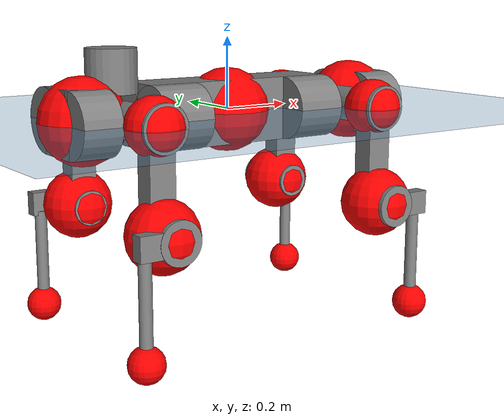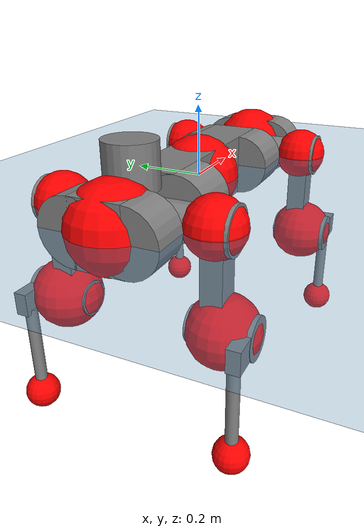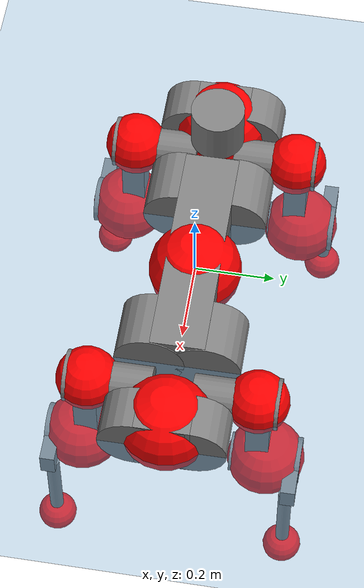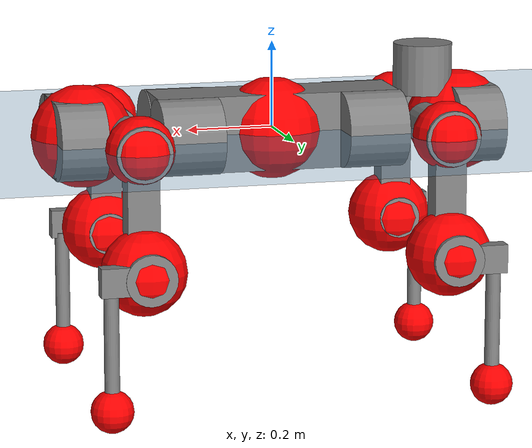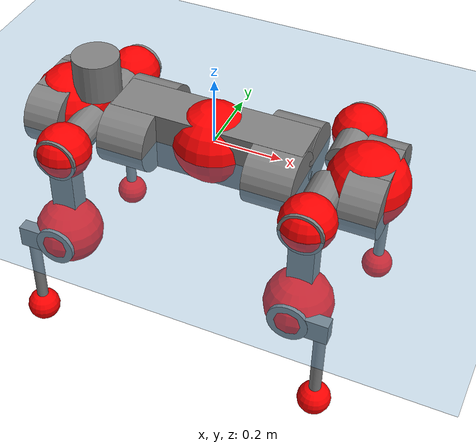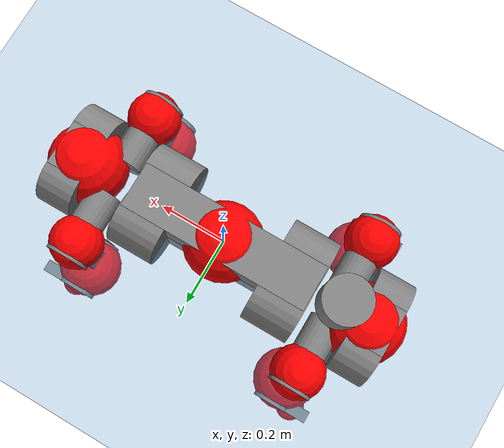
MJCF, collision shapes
<mujoco model="anymal_c">
  <compiler angle="radian" assetdir="assets" balanceinertia="true" inertiafromgeom="false"/>

  <option timestep="0.005" density="1.2" viscosity="2e-05"/>

  <size nkey="1"/>

  <visual>
    <quality shadowsize="8192"/>
    <map shadowclip="0.5"/>
  </visual>

  <default>
    <default class="/">
      <material specular="0" shininess="0.25"/>
      <geom contype="0" conaffinity="0" group="1" solref="-1000 -80"/>
      <site size="0.01 0.005 0.005" group="5"/>
      <general forcelimited="true" forcerange="-80 80" biastype="affine" gainprm="80" biasprm="0 -80 -2"/>
      <default class="anymal_c">
        <joint armature="0.01" damping="0.01" frictionloss="0.1"/>
        <default class="visual">
          <geom type="mesh" group="2"/>
          <default class="visual_zflip"/>
        </default>
        <default class="collision">
          <geom type="cylinder" group="3"/>
          <default class="foot">
            <geom size="0.03 0 0" type="sphere" condim="6" priority="1" friction="0.8 0.02 0.01" solimp="0.015 1 0.03"/>
          </default>
        </default>
      </default>
      <default class="reward_collision_sphere">
        <geom group="5" rgba="1 0 0 1"/>
      </default>
    </default>
  </default>

  <asset>
    <texture type="skybox" colorspace="auto" name="//unnamed_texture_0" builtin="gradient" rgb1="0.95 0.95 0.95" rgb2="0.95 0.95 0.95" width="100" height="600"/>
    <texture type="2d" colorspace="auto" name="texplane" builtin="checker" rgb1="0.345 0.575 0.748" rgb2="0.345 0.575 0.748" markrgb="1 1 1" width="512" height="512"/>
    <texture type="2d" colorspace="linear" name="base" file="base.png"/>
    <texture type="2d" colorspace="linear" name="top_shell" file="top_shell.png"/>
    <texture type="2d" colorspace="linear" name="bottom_shell" file="bottom_shell.png"/>
    <texture type="2d" colorspace="linear" name="remote" file="remote.png"/>
    <texture type="2d" colorspace="linear" name="hatch" file="hatch.png"/>
    <texture type="2d" colorspace="linear" name="handle" file="handle.png"/>
    <texture type="2d" colorspace="linear" name="face" file="face.png"/>
    <texture type="2d" colorspace="linear" name="battery" file="battery.png"/>
    <texture type="2d" colorspace="linear" name="lidar_cage" file="lidar_cage.png"/>
    <texture type="2d" colorspace="linear" name="depth_camera" file="depth_camera.png"/>
    <texture type="2d" colorspace="linear" name="wide_angle_camera" file="wide_angle_camera.png"/>
    <texture type="2d" colorspace="linear" name="lidar" file="lidar.png"/>
    <texture type="2d" colorspace="linear" name="drive" file="drive.png"/>
    <texture type="2d" colorspace="linear" name="hip_l" file="hip_l.png"/>
    <texture type="2d" colorspace="linear" name="shank_l" file="shank_l.png"/>
    <texture type="2d" colorspace="linear" name="foot" file="foot.png"/>
    <texture type="2d" colorspace="linear" name="thigh" file="thigh.png"/>
    <texture type="2d" colorspace="linear" name="shank_r" file="shank_r.png"/>
    <texture type="2d" colorspace="linear" name="hip_r" file="hip_r.png"/>
    <material name="MatPlane" class="/" texture="texplane" texuniform="true" texrepeat="2 2" specular="0.9" shininess="0.5"/>
    <material name="black_plastic" class="/" rgba="0.007 0.007 0.007 1"/>
    <material name="green" class="/" rgba="0.052 0.178 0.033 1"/>
    <material name="red" class="/" rgba="0.178 0.006 0.005 1"/>
    <material name="yellow" class="/" rgba="0.178 0.119 0.006 1"/>
    <material name="lwl" class="/" rgba="0.8 0.8 0.8 1"/>
    <material name="base" class="/" texture="base"/>
    <material name="top_shell" class="/" texture="top_shell"/>
    <material name="bottom_shell" class="/" texture="bottom_shell"/>
    <material name="hip_l" class="/" texture="hip_l"/>
    <material name="thigh" class="/" texture="thigh"/>
    <material name="shank_l" class="/" texture="shank_l"/>
    <material name="foot" class="/" texture="foot"/>
    <material name="hip_r" class="/" texture="hip_r"/>
    <material name="shank" class="/" texture="shank_r"/>
    <material name="hatch" class="/" texture="hatch"/>
    <material name="remote" class="/" texture="remote"/>
    <material name="handle" class="/" texture="handle"/>
    <material name="face" class="/" texture="face"/>
    <material name="depth_camera" class="/" texture="depth_camera"/>
    <material name="wide_angle_camera" class="/" texture="wide_angle_camera"/>
    <material name="battery" class="/" texture="battery"/>
    <material name="lidar_cage" class="/" texture="lidar_cage"/>
    <material name="lidar" class="/" texture="lidar"/>
    <material name="drive" class="/" texture="drive"/>
    <mesh name="base_0" class="/" file="base_0.obj"/>
    <mesh name="base_1" class="/" file="base_1.obj"/>
    <mesh name="base_2" class="/" file="base_2.obj"/>
    <mesh name="base_3" class="/" file="base_3.obj"/>
    <mesh name="base_4" class="/" file="base_4.obj"/>
    <mesh name="base_5" class="/" file="base_5.obj"/>
    <mesh name="top_shell" class="/" file="top_shell.obj"/>
    <mesh name="bottom_shell" class="/" file="bottom_shell.obj"/>
    <mesh name="remote" class="/" file="remote.obj"/>
    <mesh name="handle" class="/" file="handle.obj"/>
    <mesh name="face" class="/" file="face.obj"/>
    <mesh name="wide_angle_camera" class="/" file="wide_angle_camera.obj"/>
    <mesh name="depth_camera" class="/" file="depth_camera.obj"/>
    <mesh name="battery" class="/" file="battery.obj"/>
    <mesh name="lidar_cage" class="/" file="lidar_cage.obj"/>
    <mesh name="lidar" class="/" file="lidar.obj"/>
    <mesh name="drive" class="/" file="drive.obj"/>
    <mesh name="hip_l" class="/" file="hip_l.obj"/>
    <mesh name="thigh" class="/" file="thigh.obj"/>
    <mesh name="shank_l" class="/" file="shank_l.obj"/>
    <mesh name="foot" class="/" file="foot.obj"/>
    <mesh name="hip_r" class="/" file="hip_r.obj"/>
    <mesh name="hatch" class="/" file="hatch.obj"/>
    <mesh name="shank_r" class="/" file="shank_r.obj"/>
  </asset>

  <worldbody>
    <geom name="floor" class="/" size="100 100 0.125" type="plane" group="0" material="MatPlane"/>
    <light name="toplight_shadow" class="/" pos="0 0 5" dir="0.0990148 0.0990148 -0.990148" type="directional" ambient="0.04 0.04 0.04" diffuse="0.55 0.55 0.55" specular="0.12 0.12 0.12"/>
    <light name="toplight_fill" class="/" pos="0 0 5" dir="0.0990148 0.0990148 -0.990148" type="directional" castshadow="false" ambient="0.04 0.04 0.04" diffuse="0.3 0.3 0.3" specular="0.08 0.08 0.08"/>
    <body name="trunk" childclass="anymal_c" pos="-0.000972719 0.000519013 -0.00159988" quat="0.999999 -0.000403984 -0.000139375 0.000936153">
      <inertial pos="0.00162665 0.00255412 0.0434128" quat="0.498325 0.491671 0.503906 0.505975" mass="17.7703" diaginertia="0.647996 0.643902 0.166614"/>
      <joint name="//unnamed_joint_0" type="free" armature="0" damping="0" frictionloss="0"/>
      <geom name="//unnamed_geom_1" class="visual" material="green" mesh="base_0"/>
      <geom name="//unnamed_geom_2" class="visual" material="yellow" mesh="base_1"/>
      <geom name="//unnamed_geom_3" class="visual" material="red" mesh="base_2"/>
      <geom name="//unnamed_geom_4" class="visual" material="black_plastic" mesh="base_3"/>
      <geom name="//unnamed_geom_5" class="visual" material="lwl" mesh="base_4"/>
      <geom name="//unnamed_geom_6" class="visual" material="base" mesh="base_5"/>
      <geom name="trunk_1" class="collision" size="0.284812 0.0687478 0.08839" type="box"/>
      <geom name="trunk_2" class="collision" size="0.08839 0.0712031" pos="0.216835 0.0701892 0" quat="0.707107 0 0.707107 0"/>
      <geom name="trunk_3" class="collision" size="0.08839 0.0712031" pos="-0.216835 0.0701892 0" quat="0.707107 0 0.707107 0"/>
      <geom name="trunk_4" class="collision" size="0.08839 0.0712031" pos="0.216835 -0.0701892 0" quat="0.707107 0 0.707107 0"/>
      <geom name="trunk_5" class="collision" size="0.08839 0.0712031" pos="-0.216835 -0.0701892 0" quat="0.707107 0 0.707107 0"/>
      <geom name="//unnamed_geom_12" class="visual" material="top_shell" mesh="top_shell"/>
      <geom name="//unnamed_geom_13" class="visual" material="bottom_shell" mesh="bottom_shell"/>
      <geom name="//unnamed_geom_14" class="visual" material="remote" mesh="remote"/>
      <geom name="//unnamed_geom_15" class="visual" material="handle" mesh="handle"/>
      <geom name="//unnamed_geom_16" class="visual" pos="0.413232 0 0" quat="1 0 0 0" material="face" mesh="face"/>
      <geom name="trunk_6" class="collision" size="0.0540161 0.0687478 0.08839" pos="0.468064 0 0" type="box"/>
      <geom name="//unnamed_geom_18" class="collision" size="0.08839 0.0540161" pos="0.468064 0.0701892 0" quat="0.707107 0 0.707107 0"/>
      <geom name="//unnamed_geom_19" class="collision" size="0.08839 0.0540161" pos="0.468064 -0.0701892 0" quat="0.707107 0 0.707107 0"/>
      <geom name="//unnamed_geom_20" class="visual" pos="0.460236 0 -0.0272615" quat="0.965926 0 0.258819 0" material="depth_camera" mesh="depth_camera"/>
      <geom name="//unnamed_geom_21" class="visual" pos="0.511431 0 0.014172" material="wide_angle_camera" mesh="wide_angle_camera"/>
      <geom name="//unnamed_geom_22" class="visual_zflip" pos="-0.413232 0 0" quat="0 0 0 1" material="face" mesh="face"/>
      <geom name="trunk_7" class="collision" size="0.0540161 0.0687478 0.08839" pos="-0.468064 0 0" quat="0 0 0 1" type="box"/>
      <geom name="//unnamed_geom_24" class="collision" size="0.08839 0.0540161" pos="-0.468064 -0.0701892 0" quat="0 -0.707107 0 0.707107"/>
      <geom name="//unnamed_geom_25" class="collision" size="0.08839 0.0540161" pos="-0.468064 0.0701892 0" quat="0 -0.707107 0 0.707107"/>
      <geom name="//unnamed_geom_26" class="visual" pos="-0.460236 0 -0.0272615" quat="0 -0.258819 0 0.965926" material="depth_camera" mesh="depth_camera"/>
      <geom name="//unnamed_geom_27" class="visual_zflip" pos="-0.511431 0 0.014172" quat="0 0 0 1" material="wide_angle_camera" mesh="wide_angle_camera"/>
      <geom name="//unnamed_geom_28" class="visual" material="battery" mesh="battery"/>
      <geom name="//unnamed_geom_29" class="visual" pos="0 0.0767401 0.0278833" quat="0.683013 -0.183013 0.183013 0.683013" material="depth_camera" mesh="depth_camera"/>
      <geom name="//unnamed_geom_30" class="visual" pos="0 -0.0767401 0.0278833" quat="0.683013 0.183013 0.183013 -0.683013" material="depth_camera" mesh="depth_camera"/>
      <geom name="//unnamed_geom_31" class="visual" pos="-0.362887 0 0.0695817" quat="1 0 0 0" material="lidar_cage" mesh="lidar_cage"/>
      <geom name="trunk_8" class="collision" size="0.0687478 0.0589267" pos="-0.362887 0 0.126383"/>
      <geom name="//unnamed_geom_33" class="visual" pos="-0.362887 2.2633e-06 0.134619" quat="0.707107 0 0 -0.707107" material="lidar" mesh="lidar"/>
      <geom name="//unnamed_geom_34" class="visual" pos="0.298983 0.104261 9.66209e-10" quat="0.258819 0.965926 0 0" material="drive" mesh="drive"/>
      <geom name="//unnamed_geom_35" class="visual" pos="0.298983 -0.104261 -9.66209e-10" quat="0.258819 -0.965926 0 0" material="drive" mesh="drive"/>
      <geom name="//unnamed_geom_36" class="visual" pos="-0.298983 0.104261 -9.66209e-10" quat="0 0 0.965926 -0.258819" material="drive" mesh="drive"/>
      <geom name="//unnamed_geom_37" class="visual" pos="-0.298983 -0.104261 9.66209e-10" quat="0 0 -0.965926 -0.258819" material="drive" mesh="drive"/>
      <geom name="//unnamed_geom_38" class="visual" pos="0.115645 0 0.0691084" quat="1 0 0 0" material="hatch" mesh="hatch"/>
      <geom name="//unnamed_geom_39" class="reward_collision_sphere" size="0.117853"/>
      <geom name="//unnamed_geom_40" class="reward_collision_sphere" size="0.117853" pos="0.448624 0 0"/>
      <geom name="//unnamed_geom_41" class="reward_collision_sphere" size="0.117853" pos="-0.448624 0 0"/>
      <site name="imu" pos="0.246109 0.0218229 0.0300555" size="0.00982111"/>
      <camera name="track" pos="0 -2.0054 0" quat="0.707107 0.707107 0 0" mode="trackcom"/>
      <camera name="ego_camera" pos="0.448624 0 -0.0378676" quat="-0.5 -0.5 0.5 0.5"/>
      <body name="LF_HIP" pos="0.299406 0.10645 0.00266804" quat="0.258925 0.965898 4.92154e-05 7.10722e-05">
        <inertial pos="0.0542737 -0.0144918 -0.00933768" quat="-0.126214 0.710659 -0.12694 0.680382" mass="2.55664" diaginertia="0.00577285 0.00477601 0.00241297"/>
        <joint name="LF_HAA" pos="0 0 0" axis="0.999939 -0.00687813 -0.00858593" range="-0.727787 0.539602" armature="0.00990082" damping="0" frictionloss="0.110493"/>
        <geom name="//unnamed_geom_42" class="visual" pos="0 5.68377e-05 -9.33555e-06" quat="0.258819 -0.965926 0 0" material="hip_l" mesh="hip_l"/>
        <geom name="//unnamed_geom_43" class="visual" pos="0.0597168 -0.0724155 -0.0413948" quat="0.183013 -0.683013 0.683013 0.183013" material="drive" mesh="drive"/>
        <geom name="//unnamed_geom_44" class="collision" size="0.0491056 0.0687478" pos="0.0597168 -0.0119921 -0.0065369" quat="-0.353553 -0.612372 0.612372 -0.353553"/>
        <body name="LF_THIGH" pos="0.0573417 -0.0705798 -0.0377092" quat="0.183099 -0.682925 0.683122 0.182846">
          <inertial pos="0.0309487 0.000587541 -0.231817" quat="0.993625 -0.00547024 -0.0755823 0.0834659" mass="2.82189" diaginertia="0.0287905 0.029363 0.00298054"/>
          <joint name="LF_HFE" pos="0 0 0" axis="0.999995 0.00263956 -0.00172389" range="-3.19808 3.13537" armature="0.00857809" damping="0.021737" frictionloss="0.0978789"/>
          <geom name="//unnamed_geom_45" class="visual" pos="-0.000114619 -1.80613e-07 0" quat="0.707107 0 0 -0.707107" material="thigh" mesh="thigh"/>
          <geom name="//unnamed_geom_46" class="collision" size="0.0638372 0.0392845" pos="0.0398777 0 0" quat="0.5 0.5 -0.5 -0.5"/>
          <geom name="//unnamed_geom_47" class="collision" size="0.0368292 0.0294633 0.138786" pos="0.0299082 0 -0.133781" quat="0.707107 0 0 -0.707107" type="box"/>
          <geom name="//unnamed_geom_48" class="visual" pos="0.0999932 0 -0.269807" quat="1 0 0 0" material="drive" mesh="drive"/>
          <geom name="//unnamed_geom_49" class="collision" size="0.0491056 0.0687478" pos="0.0302073 0 -0.269807" quat="0.707107 0 0.707107 0"/>
          <geom name="//unnamed_geom_50" class="reward_collision_sphere" size="0.0785689" pos="0.0249235 0 0"/>
          <body name="LF_SHANK" pos="0.100608 0.000510645 -0.271088" quat="1 -7.09469e-06 2.43436e-06 3.52659e-05">
            <inertial pos="0.00446416 -0.0633141 -0.0765937" quat="0.992573 -0.119 -7.50347e-05 -0.0252572" mass="0.563848" diaginertia="0.00978894 0.00928743 0.000849763"/>
            <joint name="LF_KFE" pos="0 0 0" axis="0.999988 -0.00382773 -0.00304153" range="-3.16225 3.19279" armature="0.00967947" damping="0.00962154" frictionloss="0.105078"/>
            <geom name="//unnamed_geom_51" class="visual" pos="-3.73747e-05 -0.000199284 0" quat="0.707107 0 0 -0.707107" material="shank_l" mesh="shank_l"/>
            <geom name="LF_kfe_act" class="collision" size="0.0589267 0.0196422" pos="0.0199388 0 0" quat="0.5 0.5 -0.5 -0.5"/>
            <geom name="//unnamed_geom_53" class="collision" size="0.0564704 0.0331463 0.0186601" pos="0.0199388 -0.0576544 0" quat="0.5 0.5 -0.5 -0.5" type="box"/>
            <geom name="//unnamed_geom_54" class="visual" pos="0.0130101 -0.0882519 -0.319953" quat="0.382683 0 0 -0.92388" material="foot" mesh="foot"/>
            <geom name="LF_calf" class="collision" size="0.0171869 0.138725" pos="0.0130101 -0.0881877 -0.159976" quat="0.707107 0 0 -0.707107"/>
            <geom name="LF_foot" class="foot" size="0.0290459" pos="0.0130101 -0.0881877 -0.298652" quat="0.707107 0 0 -0.707107"/>
            <geom name="//unnamed_geom_57" class="reward_collision_sphere" size="0.0982111" pos="-0.0498471 0 0"/>
            <geom name="//unnamed_geom_58" class="reward_collision_sphere" size="0.0491056" pos="0.0130101 -0.0881877 -0.298652"/>
            <site name="LF_foot" class="foot" pos="0.0130101 -0.0881877 -0.298652" quat="0.707107 0 0 -0.707107" size="0.00982111"/>
          </body>
        </body>
      </body>
      <body name="RF_HIP" pos="0.297098 -0.103728 0.00249881" quat="0.25925 -0.96581 -0.000290451 -8.20567e-05">
        <inertial pos="0.0549125 0.0156808 -0.00866732" quat="0.133793 0.676193 0.122569 0.714031" mass="2.65055" diaginertia="0.00566132 0.00492374 0.00244448"/>
        <joint name="RF_HAA" pos="0 0 0" axis="0.999947 -0.00134361 0.0102295" range="-0.525735 0.674367" armature="0.00999518" damping="0" frictionloss="0.112005"/>
        <geom name="//unnamed_geom_59" class="visual" pos="0 -5.68373e-05 -9.33552e-06" quat="0.258819 0.965926 0 0" material="hip_r" mesh="hip_r"/>
        <geom name="//unnamed_geom_60" class="visual" pos="0.0597168 0.0724155 -0.0413948" quat="0.183013 0.683013 0.683013 -0.183013" material="drive" mesh="drive"/>
        <geom name="//unnamed_geom_61" class="collision" size="0.0491056 0.0687478" pos="0.0597168 0.0119921 -0.0065369" quat="-0.353553 0.612372 0.612372 0.353553"/>
        <body name="RF_THIGH" pos="0.0600078 0.0700686 -0.0407955" quat="0.18368 0.682793 0.682925 -0.18349">
          <inertial pos="0.0285809 0.000462274 -0.233013" quat="0.992747 -0.00721363 -0.0788666 0.0904495" mass="3.02161" diaginertia="0.0297315 0.029399 0.00327611"/>
          <joint name="RF_HFE" pos="0 0 0" axis="1 -0.00035461 -3.15572e-05" stiffness="0.0133184" range="-3.14788 3.08501" armature="0.00873696" damping="0.00715291" frictionloss="0.0848061"/>
          <geom name="//unnamed_geom_62" class="visual" pos="-0.000114619 -1.80613e-07 0" quat="0.707107 0 0 -0.707107" material="thigh" mesh="thigh"/>
          <geom name="//unnamed_geom_63" class="collision" size="0.0638372 0.0392845" pos="0.0398777 0 0" quat="0.5 0.5 0.5 0.5"/>
          <geom name="//unnamed_geom_64" class="collision" size="0.0368292 0.0294633 0.138786" pos="0.0299082 0 -0.133781" quat="0.707107 0 0 0.707107" type="box"/>
          <geom name="//unnamed_geom_65" class="visual" pos="0.0999932 0 -0.269807" quat="1 0 0 0" material="drive" mesh="drive"/>
          <geom name="//unnamed_geom_66" class="collision" size="0.0491056 0.0687478" pos="0.0302073 0 -0.269807" quat="0.707107 0 0.707107 0"/>
          <geom name="//unnamed_geom_67" class="reward_collision_sphere" size="0.0785689" pos="0.0249235 0 0"/>
          <body name="RF_SHANK" pos="0.0979185 0.000370754 -0.270372" quat="1 -5.44669e-06 -4.52942e-05 -0.000104441">
            <inertial pos="0.00549523 0.0592537 -0.0733859" quat="0.993105 0.113234 0.00164576 0.0302822" mass="0.547306" diaginertia="0.0098468 0.00938773 0.000799362"/>
            <joint name="RF_KFE" pos="0 0 0" axis="0.999997 -0.00191055 -0.00173795" range="-3.14288 3.15591" armature="0.00943555" damping="0" frictionloss="0.0866837"/>
            <geom name="//unnamed_geom_68" class="visual" pos="-3.73745e-05 0.000199284 0" quat="0.707107 0 0 0.707107" material="shank" mesh="shank_r"/>
            <geom name="RF_kfe_act" class="collision" size="0.0589267 0.0196422" pos="0.0199388 0 0" quat="0.5 0.5 0.5 0.5"/>
            <geom name="//unnamed_geom_70" class="collision" size="0.0564704 0.0331463 0.0186601" pos="0.0199388 0.0576544 0" quat="0.5 0.5 0.5 0.5" type="box"/>
            <geom name="//unnamed_geom_71" class="visual" pos="0.0130101 0.0882519 -0.319953" quat="0.382683 0 0 0.92388" material="foot" mesh="foot"/>
            <geom name="RF_calf" class="collision" size="0.0171869 0.138725" pos="0.0130101 0.0881877 -0.159976" quat="0.707107 0 0 0.707107"/>
            <geom name="RF_foot" class="foot" size="0.0272226" pos="0.0130101 0.0881877 -0.298652" quat="0.707107 0 0 0.707107"/>
            <geom name="//unnamed_geom_74" class="reward_collision_sphere" size="0.0982111" pos="-0.0498471 0 0"/>
            <geom name="//unnamed_geom_75" class="reward_collision_sphere" size="0.0491056" pos="0.0130101 0.0881877 -0.298652"/>
            <site name="RF_foot" class="foot" pos="0.0130101 0.0881877 -0.298652" quat="0.707107 0 0 0.707107" size="0.00982111"/>
          </body>
        </body>
      </body>
      <body name="LH_HIP" pos="-0.299033 0.102114 0.00318558" quat="0.000487635 0.00045102 0.96596 -0.258691">
        <inertial pos="0.0557549 0.0129429 -0.00945303" quat="0.13714 0.672943 0.126954 0.715698" mass="2.57897" diaginertia="0.00541532 0.00492723 0.00233436"/>
        <joint name="LH_HAA" pos="0 0 0" axis="0.999916 -0.0111246 0.00670077" range="-0.541545 0.764237" armature="0.0110374" damping="0.00318381" frictionloss="0.097584"/>
        <geom name="//unnamed_geom_76" class="visual" pos="0 -5.68373e-05 -9.33552e-06" quat="-0.258819 -0.965926 0 0" material="hip_r" mesh="hip_r"/>
        <geom name="//unnamed_geom_77" class="visual" pos="0.0597168 0.0724155 -0.0413948" quat="0.183013 0.683013 0.683013 -0.183013" material="drive" mesh="drive"/>
        <geom name="//unnamed_geom_78" class="collision" size="0.0491056 0.0687478" pos="0.0597168 0.0119921 -0.0065369" quat="-0.353553 0.612372 0.612372 0.353553"/>
        <body name="LH_THIGH" pos="0.0596529 0.0705235 -0.0399836" quat="0.181817 0.683224 0.68287 -0.183947">
          <inertial pos="0.0319697 -0.00294959 -0.233715" quat="0.992801 -0.00502063 -0.0806064 0.0884554" mass="2.96791" diaginertia="0.0309074 0.0303266 0.00333303"/>
          <joint name="LH_HFE" pos="0 0 0" axis="0.999966 0.00750806 0.00332356" stiffness="0.00877255" range="-3.19887 3.12793" armature="0.00969316" damping="0.0037553" frictionloss="0.108737"/>
          <geom name="//unnamed_geom_79" class="visual" pos="-0.000114619 -1.80613e-07 0" quat="0.707107 0 0 -0.707107" material="thigh" mesh="thigh"/>
          <geom name="//unnamed_geom_80" class="collision" size="0.0638372 0.0392845" pos="0.0398777 0 0" quat="0.5 0.5 -0.5 -0.5"/>
          <geom name="//unnamed_geom_81" class="collision" size="0.0368292 0.0294633 0.138786" pos="0.0299082 0 -0.133781" quat="0.707107 0 0 -0.707107" type="box"/>
          <geom name="//unnamed_geom_82" class="visual" pos="0.0999932 0 -0.269807" quat="1 0 0 0" material="drive" mesh="drive"/>
          <geom name="//unnamed_geom_83" class="collision" size="0.0491056 0.0687478" pos="0.0302073 0 -0.269807" quat="0.707107 0 0.707107 0"/>
          <geom name="//unnamed_geom_84" class="reward_collision_sphere" size="0.0785689" pos="0.0249235 0 0"/>
          <body name="LH_SHANK" pos="0.0976906 -0.00117303 -0.271339" quat="0.999999 -0.000837324 0.00117087 0.000167804">
            <inertial pos="0.00372567 0.06407 -0.0776847" quat="0.992417 0.119708 0.00940561 0.0262822" mass="0.532852" diaginertia="0.00963238 0.00875472 0.000841166"/>
            <joint name="LH_KFE" pos="0 0 0" axis="1 -0.000185483 -0.00049685" range="-3.15866 3.11999" armature="0.0109215" damping="0.00329621" frictionloss="0.0972575"/>
            <geom name="//unnamed_geom_85" class="visual" pos="-3.73745e-05 0.000199284 0" quat="-0.707107 0 0 -0.707107" material="shank" mesh="shank_r"/>
            <geom name="LH_kfe_act" class="collision" size="0.0589267 0.0196422" pos="0.0199388 0 0" quat="0.5 0.5 -0.5 -0.5"/>
            <geom name="//unnamed_geom_87" class="collision" size="0.0564704 0.0331463 0.0186601" pos="0.0199388 0.0576544 0" quat="0.5 0.5 -0.5 -0.5" type="box"/>
            <geom name="//unnamed_geom_88" class="visual" pos="0.0130101 0.0882519 -0.319953" quat="-0.382683 0 0 -0.92388" material="foot" mesh="foot"/>
            <geom name="LH_calf" class="collision" size="0.0171869 0.138725" pos="0.0130101 0.0881877 -0.159976" quat="0.707107 0 0 -0.707107"/>
            <geom name="LH_foot" class="foot" size="0.0322591" pos="0.0130101 0.0881877 -0.298652" quat="0.707107 0 0 -0.707107"/>
            <geom name="//unnamed_geom_91" class="reward_collision_sphere" size="0.0982111" pos="-0.0498471 0 0"/>
            <geom name="//unnamed_geom_92" class="reward_collision_sphere" size="0.0491056" pos="0.0130101 0.0881877 -0.298652"/>
            <site name="LH_foot" class="foot" pos="0.0130101 0.0881877 -0.298652" quat="0.707107 0 0 -0.707107" size="0.00982111"/>
          </body>
        </body>
      </body>
      <body name="RH_HIP" pos="-0.29778 -0.104751 0.00293954" quat="-0.000469978 -1.63343e-05 -0.965937 -0.258777">
        <inertial pos="0.0537997 -0.0181359 -0.00817855" quat="-0.133495 0.710727 -0.126029 0.67909" mass="2.65518" diaginertia="0.00602505 0.00508476 0.00263248"/>
        <joint name="RH_HAA" pos="0 0 0" axis="0.999986 -0.00136411 0.00512474" range="-0.770551 0.488358" armature="0.00985665" damping="0.0110278" frictionloss="0.103866"/>
        <geom name="//unnamed_geom_93" class="visual" pos="0 5.68377e-05 -9.33555e-06" quat="-0.258819 0.965926 0 0" material="hip_l" mesh="hip_l"/>
        <geom name="//unnamed_geom_94" class="visual" pos="0.0597168 -0.0724155 -0.0413948" quat="-0.183013 0.683013 -0.683013 -0.183013" material="drive" mesh="drive"/>
        <geom name="//unnamed_geom_95" class="collision" size="0.0491056 0.0687478" pos="0.0597168 -0.0119921 -0.0065369" quat="0.353553 0.612372 -0.612372 0.353553"/>
        <body name="RH_THIGH" pos="0.0604744 -0.0714777 -0.0420613" quat="-0.183054 0.683024 -0.682929 -0.183243">
          <inertial pos="0.0330028 -0.00261472 -0.234847" quat="0.992428 -0.00582518 -0.0750114 0.0970925" mass="2.82702" diaginertia="0.0303468 0.0297593 0.00314777"/>
          <joint name="RH_HFE" pos="0 0 0" axis="0.999943 -0.00330624 -0.0101406" range="-3.13516 3.08884" armature="0.00993865" damping="0" frictionloss="0.0959587"/>
          <geom name="//unnamed_geom_96" class="visual" pos="-0.000114619 -1.80613e-07 0" quat="0.707107 0 0 -0.707107" material="thigh" mesh="thigh"/>
          <geom name="//unnamed_geom_97" class="collision" size="0.0638372 0.0392845" pos="0.0398777 0 0" quat="0.5 0.5 0.5 0.5"/>
          <geom name="//unnamed_geom_98" class="collision" size="0.0368292 0.0294633 0.138786" pos="0.0299082 0 -0.133781" quat="0.707107 0 0 0.707107" type="box"/>
          <geom name="//unnamed_geom_99" class="visual" pos="0.0999932 0 -0.269807" quat="1 0 0 0" material="drive" mesh="drive"/>
          <geom name="//unnamed_geom_100" class="collision" size="0.0491056 0.0687478" pos="0.0302073 0 -0.269807" quat="0.707107 0 0.707107 0"/>
          <geom name="//unnamed_geom_101" class="reward_collision_sphere" size="0.0785689" pos="0.0249235 0 0"/>
          <body name="RH_SHANK" pos="0.0983112 0.00330771 -0.27193" quat="1 -3.99348e-05 -0.000352744 0.000345737">
            <inertial pos="0.00676994 -0.0610663 -0.0766582" quat="0.99213 -0.120295 0.00260577 -0.0346407" mass="0.578984" diaginertia="0.0104413 0.00998863 0.00085791"/>
            <joint name="RH_KFE" pos="0 0 0" axis="0.999975 0.00695127 -0.00116635" range="-3.08132 3.13013" armature="0.0100728" damping="0" frictionloss="0.0953331"/>
            <geom name="//unnamed_geom_102" class="visual" pos="-3.73747e-05 -0.000199284 0" quat="0.707107 0 0 -0.707107" material="shank_l" mesh="shank_l"/>
            <geom name="RH_kfe_act" class="collision" size="0.0589267 0.0196422" pos="0.0199388 0 0" quat="0.5 0.5 0.5 0.5"/>
            <geom name="//unnamed_geom_104" class="collision" size="0.0564704 0.0331463 0.0186601" pos="0.0199388 -0.0576544 0" quat="0.5 0.5 0.5 0.5" type="box"/>
            <geom name="//unnamed_geom_105" class="visual" pos="0.0130101 -0.0882519 -0.319953" quat="0.382683 0 0 -0.92388" material="foot" mesh="foot"/>
            <geom name="RH_calf" class="collision" size="0.0171869 0.138725" pos="0.0130101 -0.0881877 -0.159976" quat="0.707107 0 0 0.707107"/>
            <geom name="RH_foot" class="foot" size="0.0249325" pos="0.0130101 -0.0881877 -0.298652" quat="0.707107 0 0 0.707107"/>
            <geom name="//unnamed_geom_108" class="reward_collision_sphere" size="0.0982111" pos="-0.0498471 0 0"/>
            <geom name="//unnamed_geom_109" class="reward_collision_sphere" size="0.0491056" pos="0.0130101 -0.0881877 -0.298652"/>
            <site name="RH_foot" class="foot" pos="0.0130101 -0.0881877 -0.298652" quat="0.707107 0 0 0.707107" size="0.00982111"/>
          </body>
        </body>
      </body>
    </body>
  </worldbody>

  <contact>
    <pair class="/" geom1="floor" geom2="LF_foot" name="//unnamed_contact_0"/>
    <pair class="/" geom1="floor" geom2="RF_foot" name="//unnamed_contact_1"/>
    <pair class="/" geom1="floor" geom2="LH_foot" name="//unnamed_contact_2"/>
    <pair class="/" geom1="floor" geom2="RH_foot" name="//unnamed_contact_3"/>
  </contact>

  <actuator>
    <general name="LF_HAA" class="/" joint="LF_HAA" forcerange="-77.6391 77.6391" gainprm="78.7533" biasprm="0 -78.7533 -1.80088"/>
    <general name="LF_HFE" class="/" joint="LF_HFE" forcerange="-77.9105 77.9105" gainprm="78.7533" biasprm="0 -78.7533 -1.80088"/>
    <general name="LF_KFE" class="/" joint="LF_KFE" forcerange="-86.7258 86.7258" gainprm="78.7533" biasprm="0 -78.7533 -1.80088"/>
    <general name="RF_HAA" class="/" joint="RF_HAA" forcerange="-81.5684 81.5684" gainprm="78.7533" biasprm="0 -78.7533 -1.80088"/>
    <general name="RF_HFE" class="/" joint="RF_HFE" forcerange="-88.4903 88.4903" gainprm="78.7533" biasprm="0 -78.7533 -1.80088"/>
    <general name="RF_KFE" class="/" joint="RF_KFE" forcerange="-76.9193 76.9193" gainprm="78.7533" biasprm="0 -78.7533 -1.80088"/>
    <general name="LH_HAA" class="/" joint="LH_HAA" forcerange="-77.7916 77.7916" gainprm="78.7533" biasprm="0 -78.7533 -1.80088"/>
    <general name="LH_HFE" class="/" joint="LH_HFE" forcerange="-73.792 73.792" gainprm="78.7533" biasprm="0 -78.7533 -1.80088"/>
    <general name="LH_KFE" class="/" joint="LH_KFE" forcerange="-85.5526 85.5526" gainprm="78.7533" biasprm="0 -78.7533 -1.80088"/>
    <general name="RH_HAA" class="/" joint="RH_HAA" forcerange="-79.1564 79.1564" gainprm="78.7533" biasprm="0 -78.7533 -1.80088"/>
    <general name="RH_HFE" class="/" joint="RH_HFE" forcerange="-75.2235 75.2235" gainprm="78.7533" biasprm="0 -78.7533 -1.80088"/>
    <general name="RH_KFE" class="/" joint="RH_KFE" forcerange="-86.927 86.927" gainprm="78.7533" biasprm="0 -78.7533 -1.80088"/>
  </actuator>

  <sensor>
    <gyro site="imu" name="imu_angular_velocity"/>
    <velocimeter site="imu" name="imu_linear_velocity"/>
    <framelinvel objtype="site" objname="LF_foot" name="LF_foot_global_linear_velocity"/>
    <framelinvel objtype="site" objname="RF_foot" name="RF_foot_global_linear_velocity"/>
    <framelinvel objtype="site" objname="LH_foot" name="LH_foot_global_linear_velocity"/>
    <framelinvel objtype="site" objname="RH_foot" name="RH_foot_global_linear_velocity"/>
  </sensor>

  <keyframe>
    <key name="home" qpos="0 0 0.55 1 0 0 0 0 0.4 -0.8 0 -0.4 0.8 0 -0.4 0.8 0 0.4 -0.8"/>
  </keyframe>
</mujoco>
